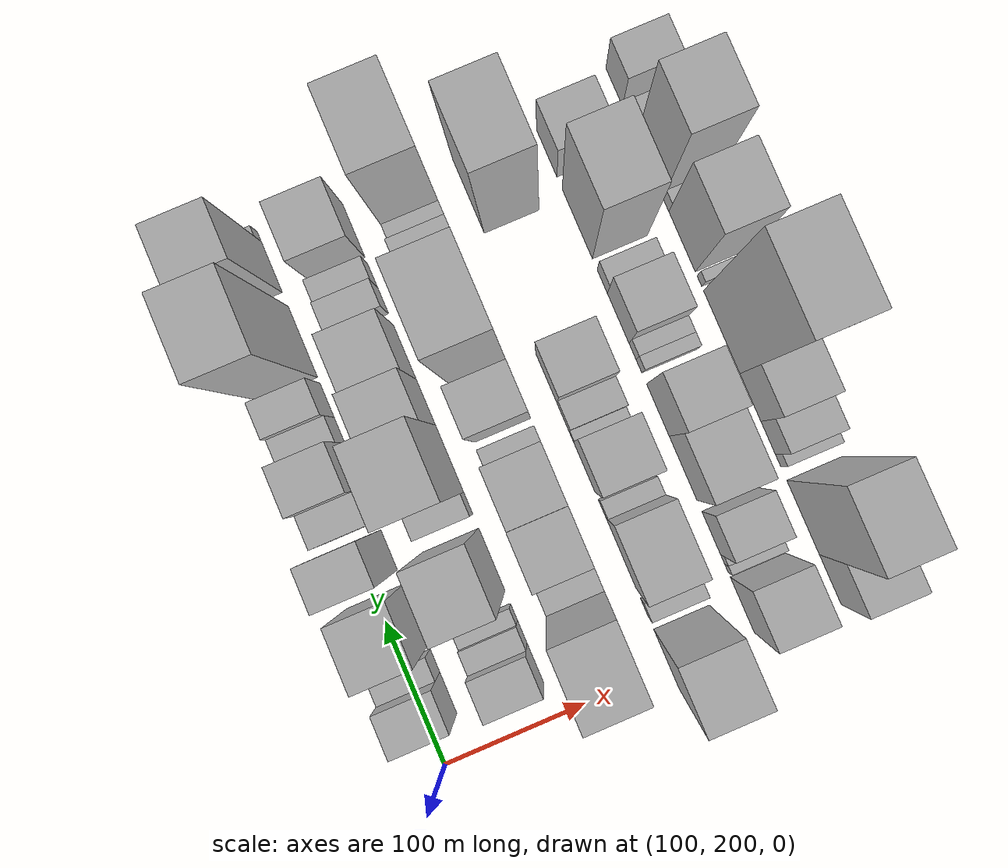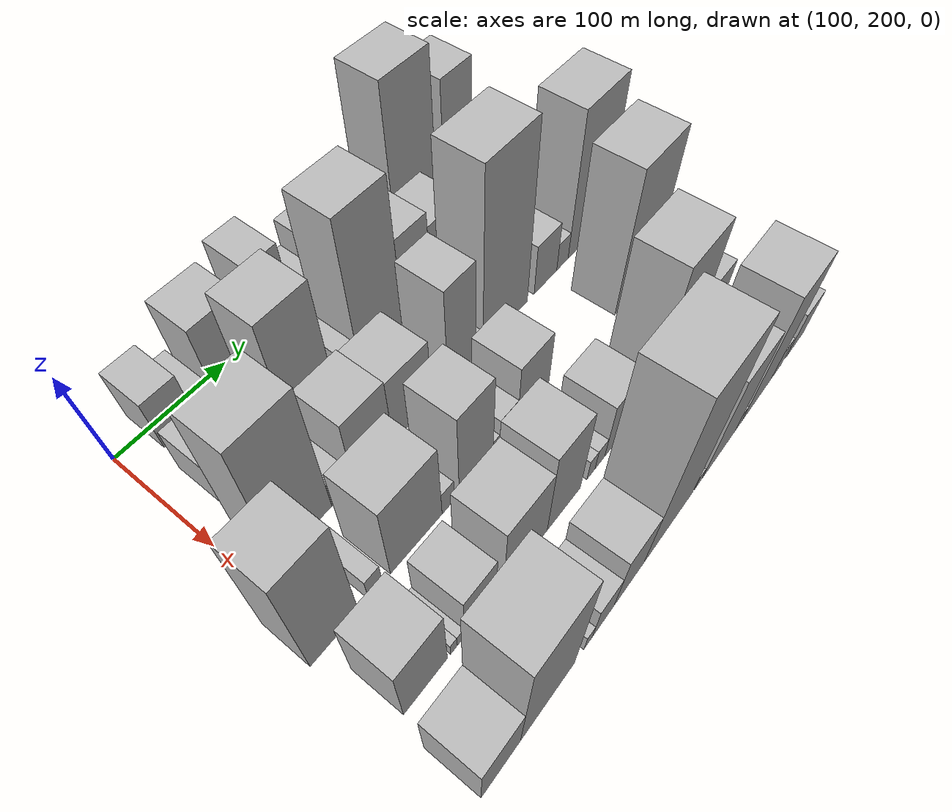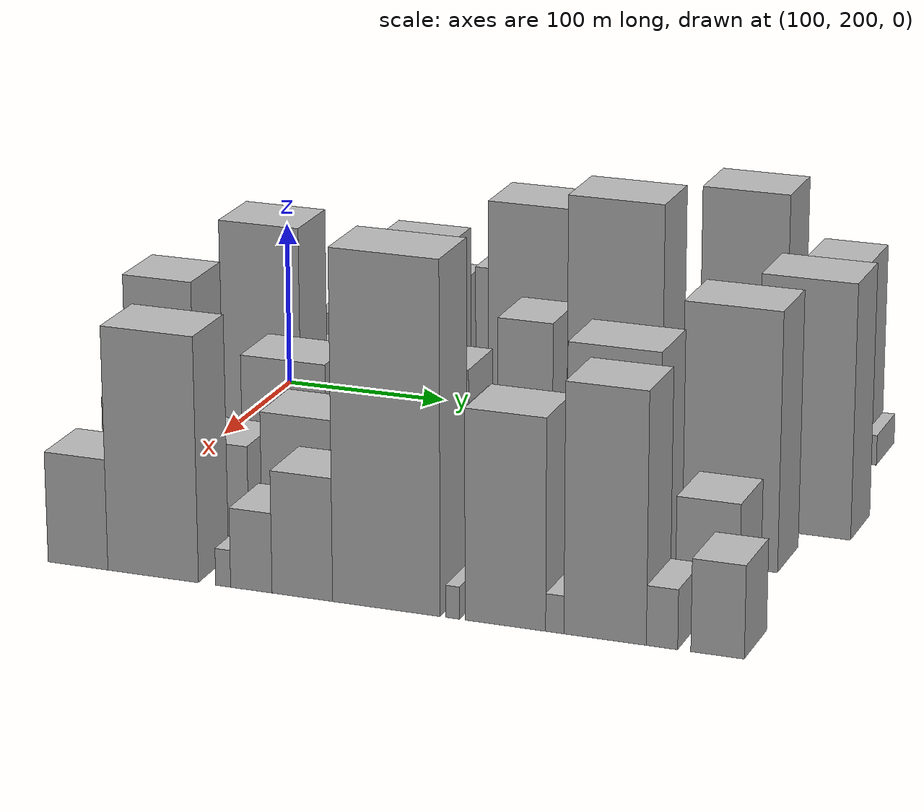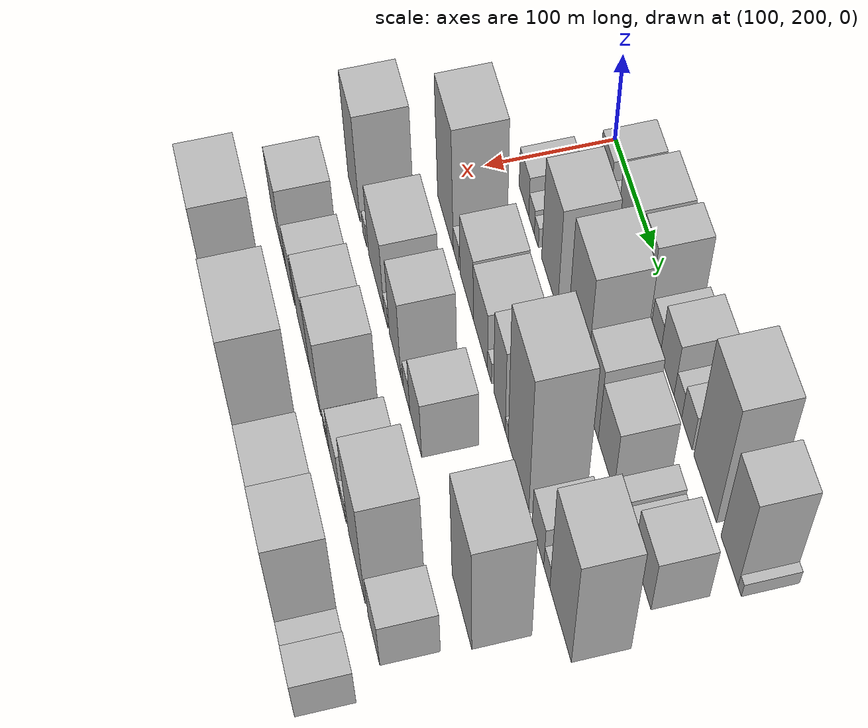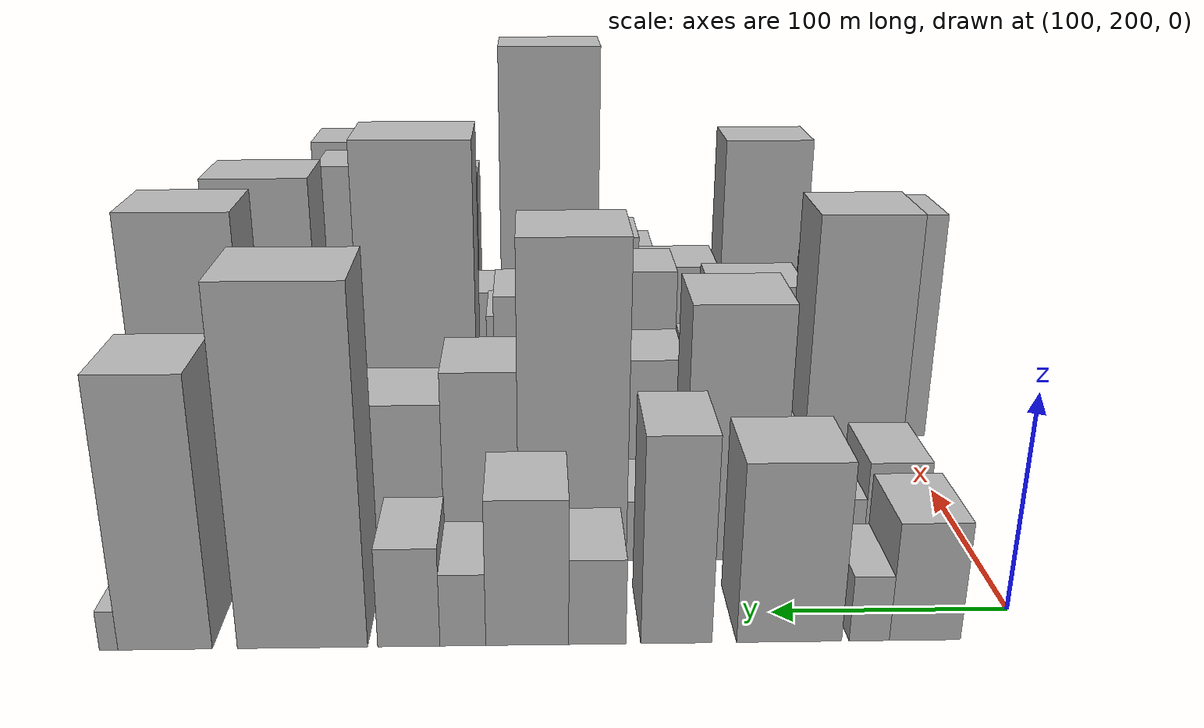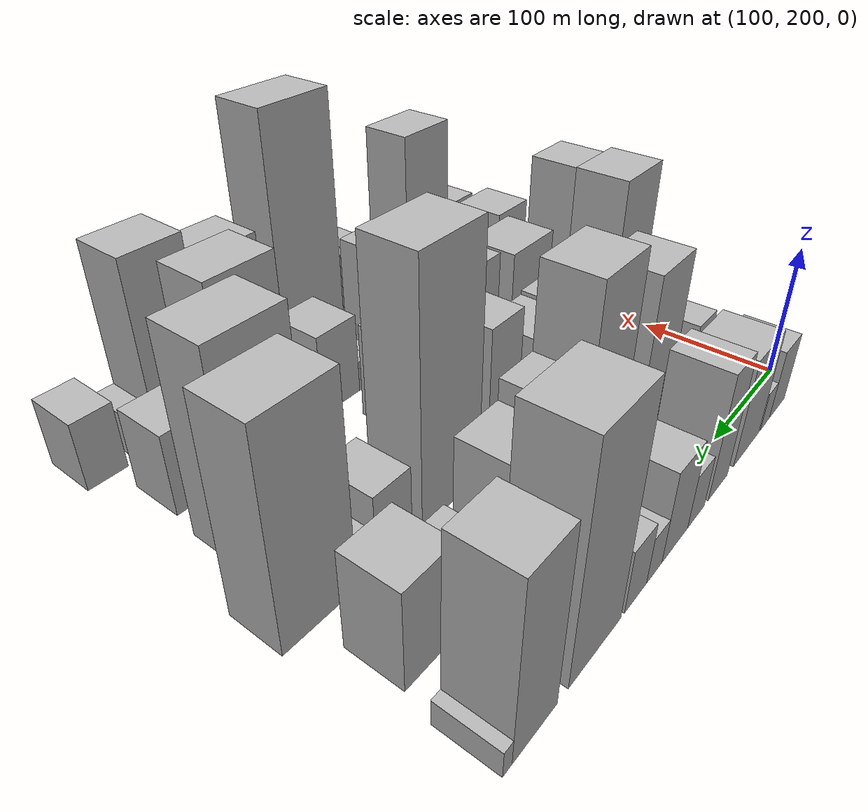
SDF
<sdf version="1.6">
 <world name="default">
  <model name="building_36">
   <static>1</static>
   <pose>100.0000 241.4894 0 0.000000 0.000000 0.000000</pose>
   <link name="link">
    <pose>0 0 27.00 0 0 0</pose>
    <collision name="collision"><geometry><box><size>40.0000 29.0069 54.0000</size></box></geometry></collision>
    <visual name="visual">
     <cast_shadows>0</cast_shadows>
     <geometry><box><size>40.0000 29.0069 54.0000</size></box></geometry>
     <material>
      <script>
       <uri>model://HANNAS_wall/materials/scripts</uri>
       <uri>model://HANNAS_wall/materials/textures</uri>
       <name>vrc/HANNAS_wall</name>
      </script>
     </material>
    </visual>
   </link>
  </model>
  <model name="building_37">
   <static>1</static>
   <pose>100.0000 264.1600 0 0.000000 0.000000 0.000000</pose>
   <link name="link">
    <pose>0 0 15.00 0 0 0</pose>
    <collision name="collision"><geometry><box><size>40.0000 16.3343 30.0000</size></box></geometry></collision>
    <visual name="visual">
     <cast_shadows>0</cast_shadows>
     <geometry><box><size>40.0000 16.3343 30.0000</size></box></geometry>
     <material>
      <script>
       <uri>model://HANNAS_wall/materials/scripts</uri>
       <uri>model://HANNAS_wall/materials/textures</uri>
       <name>vrc/HANNAS_wall</name>
      </script>
     </material>
    </visual>
   </link>
  </model>
  <model name="building_38">
   <static>1</static>
   <pose>100.0000 296.6469 0 0.000000 0.000000 0.000000</pose>
   <link name="link">
    <pose>0 0 40.50 0 0 0</pose>
    <collision name="collision"><geometry><box><size>40.0000 42.6395 81.0000</size></box></geometry></collision>
    <visual name="visual">
     <cast_shadows>0</cast_shadows>
     <geometry><box><size>40.0000 42.6395 81.0000</size></box></geometry>
     <material>
      <script>
       <uri>model://HANNAS_wall/materials/scripts</uri>
       <uri>model://HANNAS_wall/materials/textures</uri>
       <name>vrc/HANNAS_wall</name>
      </script>
     </material>
    </visual>
   </link>
  </model>
  <model name="building_39">
   <static>1</static>
   <pose>100.0000 342.3426 0 0.000000 0.000000 0.000000</pose>
   <link name="link">
    <pose>0 0 46.50 0 0 0</pose>
    <collision name="collision"><geometry><box><size>40.0000 28.7520 93.0000</size></box></geometry></collision>
    <visual name="visual">
     <cast_shadows>0</cast_shadows>
     <geometry><box><size>40.0000 28.7520 93.0000</size></box></geometry>
     <material>
      <script>
       <uri>model://HANNAS_wall/materials/scripts</uri>
       <uri>model://HANNAS_wall/materials/textures</uri>
       <name>vrc/HANNAS_wall</name>
      </script>
     </material>
    </visual>
   </link>
  </model>
  <model name="building_40">
   <static>1</static>
   <pose>100.0000 374.2584 0 0.000000 0.000000 0.000000</pose>
   <link name="link">
    <pose>0 0 19.50 0 0 0</pose>
    <collision name="collision"><geometry><box><size>40.0000 23.0796 39.0000</size></box></geometry></collision>
    <visual name="visual">
     <cast_shadows>0</cast_shadows>
     <geometry><box><size>40.0000 23.0796 39.0000</size></box></geometry>
     <material>
      <script>
       <uri>model://HANNAS_wall/materials/scripts</uri>
       <uri>model://HANNAS_wall/materials/textures</uri>
       <name>vrc/HANNAS_wall</name>
      </script>
     </material>
    </visual>
   </link>
  </model>
  <model name="building_41">
   <static>1</static>
   <pose>100.0000 402.4575 0 0.000000 0.000000 0.000000</pose>
   <link name="link">
    <pose>0 0 33.00 0 0 0</pose>
    <collision name="collision"><geometry><box><size>40.0000 33.3187 66.0000</size></box></geometry></collision>
    <visual name="visual">
     <cast_shadows>0</cast_shadows>
     <geometry><box><size>40.0000 33.3187 66.0000</size></box></geometry>
     <material>
      <script>
       <uri>model://HANNAS_wall/materials/scripts</uri>
       <uri>model://HANNAS_wall/materials/textures</uri>
       <name>vrc/HANNAS_wall</name>
      </script>
     </material>
    </visual>
   </link>
  </model>
  <model name="building_42">
   <static>1</static>
   <pose>100.0000 428.3117 0 0.000000 0.000000 0.000000</pose>
   <link name="link">
    <pose>0 0 16.50 0 0 0</pose>
    <collision name="collision"><geometry><box><size>40.0000 18.3898 33.0000</size></box></geometry></collision>
    <visual name="visual">
     <cast_shadows>0</cast_shadows>
     <geometry><box><size>40.0000 18.3898 33.0000</size></box></geometry>
     <material>
      <script>
       <uri>model://HANNAS_wall/materials/scripts</uri>
       <uri>model://HANNAS_wall/materials/textures</uri>
       <name>vrc/HANNAS_wall</name>
      </script>
     </material>
    </visual>
   </link>
  </model>
  <model name="building_43">
   <static>1</static>
   <pose>100.0000 449.9957 0 0.000000 0.000000 0.000000</pose>
   <link name="link">
    <pose>0 0 22.50 0 0 0</pose>
    <collision name="collision"><geometry><box><size>40.0000 24.9781 45.0000</size></box></geometry></collision>
    <visual name="visual">
     <cast_shadows>0</cast_shadows>
     <geometry><box><size>40.0000 24.9781 45.0000</size></box></geometry>
     <material>
      <script>
       <uri>model://HANNAS_wall/materials/scripts</uri>
       <uri>model://HANNAS_wall/materials/textures</uri>
       <name>vrc/HANNAS_wall</name>
      </script>
     </material>
    </visual>
   </link>
  </model>
  <model name="building_44">
   <static>1</static>
   <pose>100.0000 492.5037 0 0.000000 0.000000 0.000000</pose>
   <link name="link">
    <pose>0 0 78.00 0 0 0</pose>
    <collision name="collision"><geometry><box><size>40.0000 52.0380 156.0000</size></box></geometry></collision>
    <visual name="visual">
     <cast_shadows>0</cast_shadows>
     <geometry><box><size>40.0000 52.0380 156.0000</size></box></geometry>
     <material>
      <script>
       <uri>model://HANNAS_wall/materials/scripts</uri>
       <uri>model://HANNAS_wall/materials/textures</uri>
       <name>vrc/HANNAS_wall</name>
      </script>
     </material>
    </visual>
   </link>
  </model>
  <model name="building_45">
   <static>1</static>
   <pose>100.0000 547.2936 0 0.000000 0.000000 0.000000</pose>
   <link name="link">
    <pose>0 0 60.00 0 0 0</pose>
    <collision name="collision"><geometry><box><size>40.0000 37.5418 120.0000</size></box></geometry></collision>
    <visual name="visual">
     <cast_shadows>0</cast_shadows>
     <geometry><box><size>40.0000 37.5418 120.0000</size></box></geometry>
     <material>
      <script>
       <uri>model://HANNAS_wall/materials/scripts</uri>
       <uri>model://HANNAS_wall/materials/textures</uri>
       <name>vrc/HANNAS_wall</name>
      </script>
     </material>
    </visual>
   </link>
  </model>
  <model name="building_46">
   <static>1</static>
   <pose>100.0000 569.7478 0 0.000000 0.000000 0.000000</pose>
   <link name="link">
    <pose>0 0 9.00 0 0 0</pose>
    <collision name="collision"><geometry><box><size>40.0000 7.3667 18.0000</size></box></geometry></collision>
    <visual name="visual">
     <cast_shadows>0</cast_shadows>
     <geometry><box><size>40.0000 7.3667 18.0000</size></box></geometry>
     <material>
      <script>
       <uri>model://HANNAS_wall/materials/scripts</uri>
       <uri>model://HANNAS_wall/materials/textures</uri>
       <name>vrc/HANNAS_wall</name>
      </script>
     </material>
    </visual>
   </link>
  </model>
  <model name="building_87">
   <static>1</static>
   <pose>160.0000 237.1192 0 0.000000 0.000000 0.000000</pose>
   <link name="link">
    <pose>0 0 24.00 0 0 0</pose>
    <collision name="collision"><geometry><box><size>40.0000 27.9937 48.0000</size></box></geometry></collision>
    <visual name="visual">
     <cast_shadows>0</cast_shadows>
     <geometry><box><size>40.0000 27.9937 48.0000</size></box></geometry>
     <material>
      <script>
       <uri>model://HANNAS_wall/materials/scripts</uri>
       <uri>model://HANNAS_wall/materials/textures</uri>
       <name>vrc/HANNAS_wall</name>
      </script>
     </material>
    </visual>
   </link>
  </model>
  <model name="building_88">
   <static>1</static>
   <pose>160.0000 259.2010 0 0.000000 0.000000 0.000000</pose>
   <link name="link">
    <pose>0 0 15.00 0 0 0</pose>
    <collision name="collision"><geometry><box><size>40.0000 16.1699 30.0000</size></box></geometry></collision>
    <visual name="visual">
     <cast_shadows>0</cast_shadows>
     <geometry><box><size>40.0000 16.1699 30.0000</size></box></geometry>
     <material>
      <script>
       <uri>model://HANNAS_wall/materials/scripts</uri>
       <uri>model://HANNAS_wall/materials/textures</uri>
       <name>vrc/HANNAS_wall</name>
      </script>
     </material>
    </visual>
   </link>
  </model>
  <model name="building_89">
   <static>1</static>
   <pose>160.0000 273.0693 0 0.000000 0.000000 0.000000</pose>
   <link name="link">
    <pose>0 0 12.00 0 0 0</pose>
    <collision name="collision"><geometry><box><size>40.0000 11.5666 24.0000</size></box></geometry></collision>
    <visual name="visual">
     <cast_shadows>0</cast_shadows>
     <geometry><box><size>40.0000 11.5666 24.0000</size></box></geometry>
     <material>
      <script>
       <uri>model://HANNAS_wall/materials/scripts</uri>
       <uri>model://HANNAS_wall/materials/textures</uri>
       <name>vrc/HANNAS_wall</name>
      </script>
     </material>
    </visual>
   </link>
  </model>
  <model name="building_90">
   <static>1</static>
   <pose>160.0000 310.0901 0 0.000000 0.000000 0.000000</pose>
   <link name="link">
    <pose>0 0 61.50 0 0 0</pose>
    <collision name="collision"><geometry><box><size>40.0000 44.4751 123.0000</size></box></geometry></collision>
    <visual name="visual">
     <cast_shadows>0</cast_shadows>
     <geometry><box><size>40.0000 44.4751 123.0000</size></box></geometry>
     <material>
      <script>
       <uri>model://HANNAS_wall/materials/scripts</uri>
       <uri>model://HANNAS_wall/materials/textures</uri>
       <name>vrc/HANNAS_wall</name>
      </script>
     </material>
    </visual>
   </link>
  </model>
  <model name="building_91">
   <static>1</static>
   <pose>160.0000 350.1598 0 0.000000 0.000000 0.000000</pose>
   <link name="link">
    <pose>0 0 15.00 0 0 0</pose>
    <collision name="collision"><geometry><box><size>40.0000 15.6643 30.0000</size></box></geometry></collision>
    <visual name="visual">
     <cast_shadows>0</cast_shadows>
     <geometry><box><size>40.0000 15.6643 30.0000</size></box></geometry>
     <material>
      <script>
       <uri>model://HANNAS_wall/materials/scripts</uri>
       <uri>model://HANNAS_wall/materials/textures</uri>
       <name>vrc/HANNAS_wall</name>
      </script>
     </material>
    </visual>
   </link>
  </model>
  <model name="building_92">
   <static>1</static>
   <pose>160.0000 382.2190 0 0.000000 0.000000 0.000000</pose>
   <link name="link">
    <pose>0 0 76.50 0 0 0</pose>
    <collision name="collision"><geometry><box><size>40.0000 48.4540 153.0000</size></box></geometry></collision>
    <visual name="visual">
     <cast_shadows>0</cast_shadows>
     <geometry><box><size>40.0000 48.4540 153.0000</size></box></geometry>
     <material>
      <script>
       <uri>model://HANNAS_wall/materials/scripts</uri>
       <uri>model://HANNAS_wall/materials/textures</uri>
       <name>vrc/HANNAS_wall</name>
      </script>
     </material>
    </visual>
   </link>
  </model>
  <model name="building_93">
   <static>1</static>
   <pose>160.0000 422.9871 0 0.000000 0.000000 0.000000</pose>
   <link name="link">
    <pose>0 0 46.50 0 0 0</pose>
    <collision name="collision"><geometry><box><size>40.0000 33.0822 93.0000</size></box></geometry></collision>
    <visual name="visual">
     <cast_shadows>0</cast_shadows>
     <geometry><box><size>40.0000 33.0822 93.0000</size></box></geometry>
     <material>
      <script>
       <uri>model://HANNAS_wall/materials/scripts</uri>
       <uri>model://HANNAS_wall/materials/textures</uri>
       <name>vrc/HANNAS_wall</name>
      </script>
     </material>
    </visual>
   </link>
  </model>
  <model name="building_94">
   <static>1</static>
   <pose>160.0000 459.3986 0 0.000000 0.000000 0.000000</pose>
   <link name="link">
    <pose>0 0 39.00 0 0 0</pose>
    <collision name="collision"><geometry><box><size>40.0000 39.7409 78.0000</size></box></geometry></collision>
    <visual name="visual">
     <cast_shadows>0</cast_shadows>
     <geometry><box><size>40.0000 39.7409 78.0000</size></box></geometry>
     <material>
      <script>
       <uri>model://HANNAS_wall/materials/scripts</uri>
       <uri>model://HANNAS_wall/materials/textures</uri>
       <name>vrc/HANNAS_wall</name>
      </script>
     </material>
    </visual>
   </link>
  </model>
  <model name="building_95">
   <static>1</static>
   <pose>160.0000 497.0071 0 0.000000 0.000000 0.000000</pose>
   <link name="link">
    <pose>0 0 18.00 0 0 0</pose>
    <collision name="collision"><geometry><box><size>40.0000 19.4762 36.0000</size></box></geometry></collision>
    <visual name="visual">
     <cast_shadows>0</cast_shadows>
     <geometry><box><size>40.0000 19.4762 36.0000</size></box></geometry>
     <material>
      <script>
       <uri>model://HANNAS_wall/materials/scripts</uri>
       <uri>model://HANNAS_wall/materials/textures</uri>
       <name>vrc/HANNAS_wall</name>
      </script>
     </material>
    </visual>
   </link>
  </model>
  <model name="building_96">
   <static>1</static>
   <pose>160.0000 515.1529 0 0.000000 0.000000 0.000000</pose>
   <link name="link">
    <pose>0 0 15.00 0 0 0</pose>
    <collision name="collision"><geometry><box><size>40.0000 16.8154 30.0000</size></box></geometry></collision>
    <visual name="visual">
     <cast_shadows>0</cast_shadows>
     <geometry><box><size>40.0000 16.8154 30.0000</size></box></geometry>
     <material>
      <script>
       <uri>model://HANNAS_wall/materials/scripts</uri>
       <uri>model://HANNAS_wall/materials/textures</uri>
       <name>vrc/HANNAS_wall</name>
      </script>
     </material>
    </visual>
   </link>
  </model>
  <model name="building_97">
   <static>1</static>
   <pose>160.0000 548.3710 0 0.000000 0.000000 0.000000</pose>
   <link name="link">
    <pose>0 0 34.50 0 0 0</pose>
    <collision name="collision"><geometry><box><size>40.0000 39.6206 69.0000</size></box></geometry></collision>
    <visual name="visual">
     <cast_shadows>0</cast_shadows>
     <geometry><box><size>40.0000 39.6206 69.0000</size></box></geometry>
     <material>
      <script>
       <uri>model://HANNAS_wall/materials/scripts</uri>
       <uri>model://HANNAS_wall/materials/textures</uri>
       <name>vrc/HANNAS_wall</name>
      </script>
     </material>
    </visual>
   </link>
  </model>
  <model name="building_151">
   <static>1</static>
   <pose>220.0000 241.5914 0 0.000000 0.000000 0.000000</pose>
   <link name="link">
    <pose>0 0 72.00 0 0 0</pose>
    <collision name="collision"><geometry><box><size>40.0000 48.6770 144.0000</size></box></geometry></collision>
    <visual name="visual">
     <cast_shadows>0</cast_shadows>
     <geometry><box><size>40.0000 48.6770 144.0000</size></box></geometry>
     <material>
      <script>
       <uri>model://HANNAS_wall/materials/scripts</uri>
       <uri>model://HANNAS_wall/materials/textures</uri>
       <name>vrc/HANNAS_wall</name>
      </script>
     </material>
    </visual>
   </link>
  </model>
  <model name="building_152">
   <static>1</static>
   <pose>220.0000 274.8368 0 0.000000 0.000000 0.000000</pose>
   <link name="link">
    <pose>0 0 15.00 0 0 0</pose>
    <collision name="collision"><geometry><box><size>40.0000 17.8139 30.0000</size></box></geometry></collision>
    <visual name="visual">
     <cast_shadows>0</cast_shadows>
     <geometry><box><size>40.0000 17.8139 30.0000</size></box></geometry>
     <material>
      <script>
       <uri>model://HANNAS_wall/materials/scripts</uri>
       <uri>model://HANNAS_wall/materials/textures</uri>
       <name>vrc/HANNAS_wall</name>
      </script>
     </material>
    </visual>
   </link>
  </model>
  <model name="building_153">
   <static>1</static>
   <pose>220.0000 306.5463 0 0.000000 0.000000 0.000000</pose>
   <link name="link">
    <pose>0 0 37.50 0 0 0</pose>
    <collision name="collision"><geometry><box><size>40.0000 39.6051 75.0000</size></box></geometry></collision>
    <visual name="visual">
     <cast_shadows>0</cast_shadows>
     <geometry><box><size>40.0000 39.6051 75.0000</size></box></geometry>
     <material>
      <script>
       <uri>model://HANNAS_wall/materials/scripts</uri>
       <uri>model://HANNAS_wall/materials/textures</uri>
       <name>vrc/HANNAS_wall</name>
      </script>
     </material>
    </visual>
   </link>
  </model>
  <model name="building_154">
   <static>1</static>
   <pose>220.0000 347.1592 0 0.000000 0.000000 0.000000</pose>
   <link name="link">
    <pose>0 0 36.00 0 0 0</pose>
    <collision name="collision"><geometry><box><size>40.0000 41.6206 72.0000</size></box></geometry></collision>
    <visual name="visual">
     <cast_shadows>0</cast_shadows>
     <geometry><box><size>40.0000 41.6206 72.0000</size></box></geometry>
     <material>
      <script>
       <uri>model://HANNAS_wall/materials/scripts</uri>
       <uri>model://HANNAS_wall/materials/textures</uri>
       <name>vrc/HANNAS_wall</name>
      </script>
     </material>
    </visual>
   </link>
  </model>
  <model name="building_155">
   <static>1</static>
   <pose>220.0000 373.7664 0 0.000000 0.000000 0.000000</pose>
   <link name="link">
    <pose>0 0 13.50 0 0 0</pose>
    <collision name="collision"><geometry><box><size>40.0000 11.5938 27.0000</size></box></geometry></collision>
    <visual name="visual">
     <cast_shadows>0</cast_shadows>
     <geometry><box><size>40.0000 11.5938 27.0000</size></box></geometry>
     <material>
      <script>
       <uri>model://HANNAS_wall/materials/scripts</uri>
       <uri>model://HANNAS_wall/materials/textures</uri>
       <name>vrc/HANNAS_wall</name>
      </script>
     </material>
    </visual>
   </link>
  </model>
  <model name="building_156">
   <static>1</static>
   <pose>220.0000 401.7848 0 0.000000 0.000000 0.000000</pose>
   <link name="link">
    <pose>0 0 52.50 0 0 0</pose>
    <collision name="collision"><geometry><box><size>40.0000 32.4430 105.0000</size></box></geometry></collision>
    <visual name="visual">
     <cast_shadows>0</cast_shadows>
     <geometry><box><size>40.0000 32.4430 105.0000</size></box></geometry>
     <material>
      <script>
       <uri>model://HANNAS_wall/materials/scripts</uri>
       <uri>model://HANNAS_wall/materials/textures</uri>
       <name>vrc/HANNAS_wall</name>
      </script>
     </material>
    </visual>
   </link>
  </model>
  <model name="building_157">
   <static>1</static>
   <pose>220.0000 422.2212 0 0.000000 0.000000 0.000000</pose>
   <link name="link">
    <pose>0 0 10.50 0 0 0</pose>
    <collision name="collision"><geometry><box><size>40.0000 8.4297 21.0000</size></box></geometry></collision>
    <visual name="visual">
     <cast_shadows>0</cast_shadows>
     <geometry><box><size>40.0000 8.4297 21.0000</size></box></geometry>
     <material>
      <script>
       <uri>model://HANNAS_wall/materials/scripts</uri>
       <uri>model://HANNAS_wall/materials/textures</uri>
       <name>vrc/HANNAS_wall</name>
      </script>
     </material>
    </visual>
   </link>
  </model>
  <model name="building_158">
   <static>1</static>
   <pose>220.0000 454.1619 0 0.000000 0.000000 0.000000</pose>
   <link name="link">
    <pose>0 0 90.00 0 0 0</pose>
    <collision name="collision"><geometry><box><size>40.0000 55.4517 180.0000</size></box></geometry></collision>
    <visual name="visual">
     <cast_shadows>0</cast_shadows>
     <geometry><box><size>40.0000 55.4517 180.0000</size></box></geometry>
     <material>
      <script>
       <uri>model://HANNAS_wall/materials/scripts</uri>
       <uri>model://HANNAS_wall/materials/textures</uri>
       <name>vrc/HANNAS_wall</name>
      </script>
     </material>
    </visual>
   </link>
  </model>
  <model name="building_159">
   <static>1</static>
   <pose>220.0000 506.1049 0 0.000000 0.000000 0.000000</pose>
   <link name="link">
    <pose>0 0 27.00 0 0 0</pose>
    <collision name="collision"><geometry><box><size>40.0000 30.4342 54.0000</size></box></geometry></collision>
    <visual name="visual">
     <cast_shadows>0</cast_shadows>
     <geometry><box><size>40.0000 30.4342 54.0000</size></box></geometry>
     <material>
      <script>
       <uri>model://HANNAS_wall/materials/scripts</uri>
       <uri>model://HANNAS_wall/materials/textures</uri>
       <name>vrc/HANNAS_wall</name>
      </script>
     </material>
    </visual>
   </link>
  </model>
  <model name="building_160">
   <static>1</static>
   <pose>220.0000 529.2427 0 0.000000 0.000000 0.000000</pose>
   <link name="link">
    <pose>0 0 15.00 0 0 0</pose>
    <collision name="collision"><geometry><box><size>40.0000 15.8416 30.0000</size></box></geometry></collision>
    <visual name="visual">
     <cast_shadows>0</cast_shadows>
     <geometry><box><size>40.0000 15.8416 30.0000</size></box></geometry>
     <material>
      <script>
       <uri>model://HANNAS_wall/materials/scripts</uri>
       <uri>model://HANNAS_wall/materials/textures</uri>
       <name>vrc/HANNAS_wall</name>
      </script>
     </material>
    </visual>
   </link>
  </model>
  <model name="building_161">
   <static>1</static>
   <pose>220.0000 564.0679 0 0.000000 0.000000 0.000000</pose>
   <link name="link">
    <pose>0 0 73.50 0 0 0</pose>
    <collision name="collision"><geometry><box><size>40.0000 53.8087 147.0000</size></box></geometry></collision>
    <visual name="visual">
     <cast_shadows>0</cast_shadows>
     <geometry><box><size>40.0000 53.8087 147.0000</size></box></geometry>
     <material>
      <script>
       <uri>model://HANNAS_wall/materials/scripts</uri>
       <uri>model://HANNAS_wall/materials/textures</uri>
       <name>vrc/HANNAS_wall</name>
      </script>
     </material>
    </visual>
   </link>
  </model>
  <model name="building_204">
   <static>1</static>
   <pose>280.0000 205.6495 0 0.000000 0.000000 0.000000</pose>
   <link name="link">
    <pose>0 0 63.00 0 0 0</pose>
    <collision name="collision"><geometry><box><size>40.0000 41.5011 126.0000</size></box></geometry></collision>
    <visual name="visual">
     <cast_shadows>0</cast_shadows>
     <geometry><box><size>40.0000 41.5011 126.0000</size></box></geometry>
     <material>
      <script>
       <uri>model://HANNAS_wall/materials/scripts</uri>
       <uri>model://HANNAS_wall/materials/textures</uri>
       <name>vrc/HANNAS_wall</name>
      </script>
     </material>
    </visual>
   </link>
  </model>
  <model name="building_205">
   <static>1</static>
   <pose>280.0000 241.9253 0 0.000000 0.000000 0.000000</pose>
   <link name="link">
    <pose>0 0 13.50 0 0 0</pose>
    <collision name="collision"><geometry><box><size>40.0000 13.0503 27.0000</size></box></geometry></collision>
    <visual name="visual">
     <cast_shadows>0</cast_shadows>
     <geometry><box><size>40.0000 13.0503 27.0000</size></box></geometry>
     <material>
      <script>
       <uri>model://HANNAS_wall/materials/scripts</uri>
       <uri>model://HANNAS_wall/materials/textures</uri>
       <name>vrc/HANNAS_wall</name>
      </script>
     </material>
    </visual>
   </link>
  </model>
  <model name="building_206">
   <static>1</static>
   <pose>280.0000 280.7193 0 0.000000 0.000000 0.000000</pose>
   <link name="link">
    <pose>0 0 43.50 0 0 0</pose>
    <collision name="collision"><geometry><box><size>40.0000 50.5378 87.0000</size></box></geometry></collision>
    <visual name="visual">
     <cast_shadows>0</cast_shadows>
     <geometry><box><size>40.0000 50.5378 87.0000</size></box></geometry>
     <material>
      <script>
       <uri>model://HANNAS_wall/materials/scripts</uri>
       <uri>model://HANNAS_wall/materials/textures</uri>
       <name>vrc/HANNAS_wall</name>
      </script>
     </material>
    </visual>
   </link>
  </model>
  <model name="building_207">
   <static>1</static>
   <pose>280.0000 312.3597 0 0.000000 0.000000 0.000000</pose>
   <link name="link">
    <pose>0 0 13.50 0 0 0</pose>
    <collision name="collision"><geometry><box><size>40.0000 12.7430 27.0000</size></box></geometry></collision>
    <visual name="visual">
     <cast_shadows>0</cast_shadows>
     <geometry><box><size>40.0000 12.7430 27.0000</size></box></geometry>
     <material>
      <script>
       <uri>model://HANNAS_wall/materials/scripts</uri>
       <uri>model://HANNAS_wall/materials/textures</uri>
       <name>vrc/HANNAS_wall</name>
      </script>
     </material>
    </visual>
   </link>
  </model>
  <model name="building_208">
   <static>1</static>
   <pose>280.0000 341.9331 0 0.000000 0.000000 0.000000</pose>
   <link name="link">
    <pose>0 0 48.00 0 0 0</pose>
    <collision name="collision"><geometry><box><size>40.0000 36.4038 96.0000</size></box></geometry></collision>
    <visual name="visual">
     <cast_shadows>0</cast_shadows>
     <geometry><box><size>40.0000 36.4038 96.0000</size></box></geometry>
     <material>
      <script>
       <uri>model://HANNAS_wall/materials/scripts</uri>
       <uri>model://HANNAS_wall/materials/textures</uri>
       <name>vrc/HANNAS_wall</name>
      </script>
     </material>
    </visual>
   </link>
  </model>
  <model name="building_209">
   <static>1</static>
   <pose>280.0000 363.8580 0 0.000000 0.000000 0.000000</pose>
   <link name="link">
    <pose>0 0 9.00 0 0 0</pose>
    <collision name="collision"><geometry><box><size>40.0000 7.4460 18.0000</size></box></geometry></collision>
    <visual name="visual">
     <cast_shadows>0</cast_shadows>
     <geometry><box><size>40.0000 7.4460 18.0000</size></box></geometry>
     <material>
      <script>
       <uri>model://HANNAS_wall/materials/scripts</uri>
       <uri>model://HANNAS_wall/materials/textures</uri>
       <name>vrc/HANNAS_wall</name>
      </script>
     </material>
    </visual>
   </link>
  </model>
  <model name="building_210">
   <static>1</static>
   <pose>280.0000 377.6251 0 0.000000 0.000000 0.000000</pose>
   <link name="link">
    <pose>0 0 18.00 0 0 0</pose>
    <collision name="collision"><geometry><box><size>40.0000 20.0882 36.0000</size></box></geometry></collision>
    <visual name="visual">
     <cast_shadows>0</cast_shadows>
     <geometry><box><size>40.0000 20.0882 36.0000</size></box></geometry>
     <material>
      <script>
       <uri>model://HANNAS_wall/materials/scripts</uri>
       <uri>model://HANNAS_wall/materials/textures</uri>
       <name>vrc/HANNAS_wall</name>
      </script>
     </material>
    </visual>
   </link>
  </model>
  <model name="building_211">
   <static>1</static>
   <pose>280.0000 405.7894 0 0.000000 0.000000 0.000000</pose>
   <link name="link">
    <pose>0 0 36.00 0 0 0</pose>
    <collision name="collision"><geometry><box><size>40.0000 36.2403 72.0000</size></box></geometry></collision>
    <visual name="visual">
     <cast_shadows>0</cast_shadows>
     <geometry><box><size>40.0000 36.2403 72.0000</size></box></geometry>
     <material>
      <script>
       <uri>model://HANNAS_wall/materials/scripts</uri>
       <uri>model://HANNAS_wall/materials/textures</uri>
       <name>vrc/HANNAS_wall</name>
      </script>
     </material>
    </visual>
   </link>
  </model>
  <model name="building_212">
   <static>1</static>
   <pose>280.0000 539.6585 0 0.000000 0.000000 0.000000</pose>
   <link name="link">
    <pose>0 0 73.50 0 0 0</pose>
    <collision name="collision"><geometry><box><size>40.0000 54.4994 147.0000</size></box></geometry></collision>
    <visual name="visual">
     <cast_shadows>0</cast_shadows>
     <geometry><box><size>40.0000 54.4994 147.0000</size></box></geometry>
     <material>
      <script>
       <uri>model://HANNAS_wall/materials/scripts</uri>
       <uri>model://HANNAS_wall/materials/textures</uri>
       <name>vrc/HANNAS_wall</name>
      </script>
     </material>
    </visual>
   </link>
  </model>
  <model name="building_252">
   <static>1</static>
   <pose>340.0000 218.1808 0 0.000000 0.000000 0.000000</pose>
   <link name="link">
    <pose>0 0 37.50 0 0 0</pose>
    <collision name="collision"><geometry><box><size>40.0000 39.2118 75.0000</size></box></geometry></collision>
    <visual name="visual">
     <cast_shadows>0</cast_shadows>
     <geometry><box><size>40.0000 39.2118 75.0000</size></box></geometry>
     <material>
      <script>
       <uri>model://HANNAS_wall/materials/scripts</uri>
       <uri>model://HANNAS_wall/materials/textures</uri>
       <name>vrc/HANNAS_wall</name>
      </script>
     </material>
    </visual>
   </link>
  </model>
  <model name="building_253">
   <static>1</static>
   <pose>340.0000 243.9106 0 0.000000 0.000000 0.000000</pose>
   <link name="link">
    <pose>0 0 7.50 0 0 0</pose>
    <collision name="collision"><geometry><box><size>40.0000 6.2478 15.0000</size></box></geometry></collision>
    <visual name="visual">
     <cast_shadows>0</cast_shadows>
     <geometry><box><size>40.0000 6.2478 15.0000</size></box></geometry>
     <material>
      <script>
       <uri>model://HANNAS_wall/materials/scripts</uri>
       <uri>model://HANNAS_wall/materials/textures</uri>
       <name>vrc/HANNAS_wall</name>
      </script>
     </material>
    </visual>
   </link>
  </model>
  <model name="building_254">
   <static>1</static>
   <pose>340.0000 250.3614 0 0.000000 0.000000 0.000000</pose>
   <link name="link">
    <pose>0 0 7.50 0 0 0</pose>
    <collision name="collision"><geometry><box><size>40.0000 6.6537 15.0000</size></box></geometry></collision>
    <visual name="visual">
     <cast_shadows>0</cast_shadows>
     <geometry><box><size>40.0000 6.6537 15.0000</size></box></geometry>
     <material>
      <script>
       <uri>model://HANNAS_wall/materials/scripts</uri>
       <uri>model://HANNAS_wall/materials/textures</uri>
       <name>vrc/HANNAS_wall</name>
      </script>
     </material>
    </visual>
   </link>
  </model>
  <model name="building_255">
   <static>1</static>
   <pose>340.0000 269.1469 0 0.000000 0.000000 0.000000</pose>
   <link name="link">
    <pose>0 0 28.50 0 0 0</pose>
    <collision name="collision"><geometry><box><size>40.0000 30.9172 57.0000</size></box></geometry></collision>
    <visual name="visual">
     <cast_shadows>0</cast_shadows>
     <geometry><box><size>40.0000 30.9172 57.0000</size></box></geometry>
     <material>
      <script>
       <uri>model://HANNAS_wall/materials/scripts</uri>
       <uri>model://HANNAS_wall/materials/textures</uri>
       <name>vrc/HANNAS_wall</name>
      </script>
     </material>
    </visual>
   </link>
  </model>
  <model name="building_256">
   <static>1</static>
   <pose>340.0000 315.6574 0 0.000000 0.000000 0.000000</pose>
   <link name="link">
    <pose>0 0 39.00 0 0 0</pose>
    <collision name="collision"><geometry><box><size>40.0000 46.1039 78.0000</size></box></geometry></collision>
    <visual name="visual">
     <cast_shadows>0</cast_shadows>
     <geometry><box><size>40.0000 46.1039 78.0000</size></box></geometry>
     <material>
      <script>
       <uri>model://HANNAS_wall/materials/scripts</uri>
       <uri>model://HANNAS_wall/materials/textures</uri>
       <name>vrc/HANNAS_wall</name>
      </script>
     </material>
    </visual>
   </link>
  </model>
  <model name="building_257">
   <static>1</static>
   <pose>340.0000 357.5673 0 0.000000 0.000000 0.000000</pose>
   <link name="link">
    <pose>0 0 48.00 0 0 0</pose>
    <collision name="collision"><geometry><box><size>40.0000 37.7157 96.0000</size></box></geometry></collision>
    <visual name="visual">
     <cast_shadows>0</cast_shadows>
     <geometry><box><size>40.0000 37.7157 96.0000</size></box></geometry>
     <material>
      <script>
       <uri>model://HANNAS_wall/materials/scripts</uri>
       <uri>model://HANNAS_wall/materials/textures</uri>
       <name>vrc/HANNAS_wall</name>
      </script>
     </material>
    </visual>
   </link>
  </model>
  <model name="building_258">
   <static>1</static>
   <pose>340.0000 389.2674 0 0.000000 0.000000 0.000000</pose>
   <link name="link">
    <pose>0 0 12.00 0 0 0</pose>
    <collision name="collision"><geometry><box><size>40.0000 9.6847 24.0000</size></box></geometry></collision>
    <visual name="visual">
     <cast_shadows>0</cast_shadows>
     <geometry><box><size>40.0000 9.6847 24.0000</size></box></geometry>
     <material>
      <script>
       <uri>model://HANNAS_wall/materials/scripts</uri>
       <uri>model://HANNAS_wall/materials/textures</uri>
       <name>vrc/HANNAS_wall</name>
      </script>
     </material>
    </visual>
   </link>
  </model>
  <model name="building_259">
   <static>1</static>
   <pose>340.0000 400.0039 0 0.000000 0.000000 0.000000</pose>
   <link name="link">
    <pose>0 0 12.00 0 0 0</pose>
    <collision name="collision"><geometry><box><size>40.0000 11.7882 24.0000</size></box></geometry></collision>
    <visual name="visual">
     <cast_shadows>0</cast_shadows>
     <geometry><box><size>40.0000 11.7882 24.0000</size></box></geometry>
     <material>
      <script>
       <uri>model://HANNAS_wall/materials/scripts</uri>
       <uri>model://HANNAS_wall/materials/textures</uri>
       <name>vrc/HANNAS_wall</name>
      </script>
     </material>
    </visual>
   </link>
  </model>
  <model name="building_260">
   <static>1</static>
   <pose>340.0000 424.1784 0 0.000000 0.000000 0.000000</pose>
   <link name="link">
    <pose>0 0 31.50 0 0 0</pose>
    <collision name="collision"><geometry><box><size>40.0000 36.5609 63.0000</size></box></geometry></collision>
    <visual name="visual">
     <cast_shadows>0</cast_shadows>
     <geometry><box><size>40.0000 36.5609 63.0000</size></box></geometry>
     <material>
      <script>
       <uri>model://HANNAS_wall/materials/scripts</uri>
       <uri>model://HANNAS_wall/materials/textures</uri>
       <name>vrc/HANNAS_wall</name>
      </script>
     </material>
    </visual>
   </link>
  </model>
  <model name="building_261">
   <static>1</static>
   <pose>340.0000 451.1692 0 0.000000 0.000000 0.000000</pose>
   <link name="link">
    <pose>0 0 15.00 0 0 0</pose>
    <collision name="collision"><geometry><box><size>40.0000 17.4206 30.0000</size></box></geometry></collision>
    <visual name="visual">
     <cast_shadows>0</cast_shadows>
     <geometry><box><size>40.0000 17.4206 30.0000</size></box></geometry>
     <material>
      <script>
       <uri>model://HANNAS_wall/materials/scripts</uri>
       <uri>model://HANNAS_wall/materials/textures</uri>
       <name>vrc/HANNAS_wall</name>
      </script>
     </material>
    </visual>
   </link>
  </model>
  <model name="building_262">
   <static>1</static>
   <pose>340.0000 493.6561 0 0.000000 0.000000 0.000000</pose>
   <link name="link">
    <pose>0 0 69.00 0 0 0</pose>
    <collision name="collision"><geometry><box><size>40.0000 51.5532 138.0000</size></box></geometry></collision>
    <visual name="visual">
     <cast_shadows>0</cast_shadows>
     <geometry><box><size>40.0000 51.5532 138.0000</size></box></geometry>
     <material>
      <script>
       <uri>model://HANNAS_wall/materials/scripts</uri>
       <uri>model://HANNAS_wall/materials/textures</uri>
       <name>vrc/HANNAS_wall</name>
      </script>
     </material>
    </visual>
   </link>
  </model>
  <model name="building_263">
   <static>1</static>
   <pose>340.0000 545.9384 0 0.000000 0.000000 0.000000</pose>
   <link name="link">
    <pose>0 0 30.00 0 0 0</pose>
    <collision name="collision"><geometry><box><size>40.0000 35.0116 60.0000</size></box></geometry></collision>
    <visual name="visual">
     <cast_shadows>0</cast_shadows>
     <geometry><box><size>40.0000 35.0116 60.0000</size></box></geometry>
     <material>
      <script>
       <uri>model://HANNAS_wall/materials/scripts</uri>
       <uri>model://HANNAS_wall/materials/textures</uri>
       <name>vrc/HANNAS_wall</name>
      </script>
     </material>
    </visual>
   </link>
  </model>
  <model name="building_308">
   <static>1</static>
   <pose>400.0000 210.3996 0 0.000000 0.000000 0.000000</pose>
   <link name="link">
    <pose>0 0 31.50 0 0 0</pose>
    <collision name="collision"><geometry><box><size>40.0000 35.4806 63.0000</size></box></geometry></collision>
    <visual name="visual">
     <cast_shadows>0</cast_shadows>
     <geometry><box><size>40.0000 35.4806 63.0000</size></box></geometry>
     <material>
      <script>
       <uri>model://HANNAS_wall/materials/scripts</uri>
       <uri>model://HANNAS_wall/materials/textures</uri>
       <name>vrc/HANNAS_wall</name>
      </script>
     </material>
    </visual>
   </link>
  </model>
  <model name="building_309">
   <static>1</static>
   <pose>400.0000 254.6841 0 0.000000 0.000000 0.000000</pose>
   <link name="link">
    <pose>0 0 69.00 0 0 0</pose>
    <collision name="collision"><geometry><box><size>40.0000 53.0884 138.0000</size></box></geometry></collision>
    <visual name="visual">
     <cast_shadows>0</cast_shadows>
     <geometry><box><size>40.0000 53.0884 138.0000</size></box></geometry>
     <material>
      <script>
       <uri>model://HANNAS_wall/materials/scripts</uri>
       <uri>model://HANNAS_wall/materials/textures</uri>
       <name>vrc/HANNAS_wall</name>
      </script>
     </material>
    </visual>
   </link>
  </model>
  <model name="building_310">
   <static>1</static>
   <pose>400.0000 295.5516 0 0.000000 0.000000 0.000000</pose>
   <link name="link">
    <pose>0 0 10.50 0 0 0</pose>
    <collision name="collision"><geometry><box><size>40.0000 8.6466 21.0000</size></box></geometry></collision>
    <visual name="visual">
     <cast_shadows>0</cast_shadows>
     <geometry><box><size>40.0000 8.6466 21.0000</size></box></geometry>
     <material>
      <script>
       <uri>model://HANNAS_wall/materials/scripts</uri>
       <uri>model://HANNAS_wall/materials/textures</uri>
       <name>vrc/HANNAS_wall</name>
      </script>
     </material>
    </visual>
   </link>
  </model>
  <model name="building_311">
   <static>1</static>
   <pose>400.0000 311.8292 0 0.000000 0.000000 0.000000</pose>
   <link name="link">
    <pose>0 0 22.50 0 0 0</pose>
    <collision name="collision"><geometry><box><size>40.0000 23.9087 45.0000</size></box></geometry></collision>
    <visual name="visual">
     <cast_shadows>0</cast_shadows>
     <geometry><box><size>40.0000 23.9087 45.0000</size></box></geometry>
     <material>
      <script>
       <uri>model://HANNAS_wall/materials/scripts</uri>
       <uri>model://HANNAS_wall/materials/textures</uri>
       <name>vrc/HANNAS_wall</name>
      </script>
     </material>
    </visual>
   </link>
  </model>
  <model name="building_312">
   <static>1</static>
   <pose>400.0000 341.0687 0 0.000000 0.000000 0.000000</pose>
   <link name="link">
    <pose>0 0 34.50 0 0 0</pose>
    <collision name="collision"><geometry><box><size>40.0000 34.5703 69.0000</size></box></geometry></collision>
    <visual name="visual">
     <cast_shadows>0</cast_shadows>
     <geometry><box><size>40.0000 34.5703 69.0000</size></box></geometry>
     <material>
      <script>
       <uri>model://HANNAS_wall/materials/scripts</uri>
       <uri>model://HANNAS_wall/materials/textures</uri>
       <name>vrc/HANNAS_wall</name>
      </script>
     </material>
    </visual>
   </link>
  </model>
  <model name="building_313">
   <static>1</static>
   <pose>400.0000 388.6595 0 0.000000 0.000000 0.000000</pose>
   <link name="link">
    <pose>0 0 97.50 0 0 0</pose>
    <collision name="collision"><geometry><box><size>40.0000 60.6113 195.0000</size></box></geometry></collision>
    <visual name="visual">
     <cast_shadows>0</cast_shadows>
     <geometry><box><size>40.0000 60.6113 195.0000</size></box></geometry>
     <material>
      <script>
       <uri>model://HANNAS_wall/materials/scripts</uri>
       <uri>model://HANNAS_wall/materials/textures</uri>
       <name>vrc/HANNAS_wall</name>
      </script>
     </material>
    </visual>
   </link>
  </model>
  <model name="building_314">
   <static>1</static>
   <pose>400.0000 425.8662 0 0.000000 0.000000 0.000000</pose>
   <link name="link">
    <pose>0 0 9.00 0 0 0</pose>
    <collision name="collision"><geometry><box><size>40.0000 7.8020 18.0000</size></box></geometry></collision>
    <visual name="visual">
     <cast_shadows>0</cast_shadows>
     <geometry><box><size>40.0000 7.8020 18.0000</size></box></geometry>
     <material>
      <script>
       <uri>model://HANNAS_wall/materials/scripts</uri>
       <uri>model://HANNAS_wall/materials/textures</uri>
       <name>vrc/HANNAS_wall</name>
      </script>
     </material>
    </visual>
   </link>
  </model>
  <model name="building_315">
   <static>1</static>
   <pose>400.0000 454.9929 0 0.000000 0.000000 0.000000</pose>
   <link name="link">
    <pose>0 0 58.50 0 0 0</pose>
    <collision name="collision"><geometry><box><size>40.0000 44.4516 117.0000</size></box></geometry></collision>
    <visual name="visual">
     <cast_shadows>0</cast_shadows>
     <geometry><box><size>40.0000 44.4516 117.0000</size></box></geometry>
     <material>
      <script>
       <uri>model://HANNAS_wall/materials/scripts</uri>
       <uri>model://HANNAS_wall/materials/textures</uri>
       <name>vrc/HANNAS_wall</name>
      </script>
     </material>
    </visual>
   </link>
  </model>
  <model name="building_316">
   <static>1</static>
   <pose>400.0000 482.2299 0 0.000000 0.000000 0.000000</pose>
   <link name="link">
    <pose>0 0 10.50 0 0 0</pose>
    <collision name="collision"><geometry><box><size>40.0000 10.0223 21.0000</size></box></geometry></collision>
    <visual name="visual">
     <cast_shadows>0</cast_shadows>
     <geometry><box><size>40.0000 10.0223 21.0000</size></box></geometry>
     <material>
      <script>
       <uri>model://HANNAS_wall/materials/scripts</uri>
       <uri>model://HANNAS_wall/materials/textures</uri>
       <name>vrc/HANNAS_wall</name>
      </script>
     </material>
    </visual>
   </link>
  </model>
  <model name="building_317">
   <static>1</static>
   <pose>400.0000 509.5868 0 0.000000 0.000000 0.000000</pose>
   <link name="link">
    <pose>0 0 69.00 0 0 0</pose>
    <collision name="collision"><geometry><box><size>40.0000 44.6915 138.0000</size></box></geometry></collision>
    <visual name="visual">
     <cast_shadows>0</cast_shadows>
     <geometry><box><size>40.0000 44.6915 138.0000</size></box></geometry>
     <material>
      <script>
       <uri>model://HANNAS_wall/materials/scripts</uri>
       <uri>model://HANNAS_wall/materials/textures</uri>
       <name>vrc/HANNAS_wall</name>
      </script>
     </material>
    </visual>
   </link>
  </model>
  <model name="building_318">
   <static>1</static>
   <pose>400.0000 540.3578 0 0.000000 0.000000 0.000000</pose>
   <link name="link">
    <pose>0 0 16.50 0 0 0</pose>
    <collision name="collision"><geometry><box><size>40.0000 16.8506 33.0000</size></box></geometry></collision>
    <visual name="visual">
     <cast_shadows>0</cast_shadows>
     <geometry><box><size>40.0000 16.8506 33.0000</size></box></geometry>
     <material>
      <script>
       <uri>model://HANNAS_wall/materials/scripts</uri>
       <uri>model://HANNAS_wall/materials/textures</uri>
       <name>vrc/HANNAS_wall</name>
      </script>
     </material>
    </visual>
   </link>
  </model>
  <model name="building_319">
   <static>1</static>
   <pose>400.0000 570.0569 0 0.000000 0.000000 0.000000</pose>
   <link name="link">
    <pose>0 0 25.50 0 0 0</pose>
    <collision name="collision"><geometry><box><size>40.0000 28.5477 51.0000</size></box></geometry></collision>
    <visual name="visual">
     <cast_shadows>0</cast_shadows>
     <geometry><box><size>40.0000 28.5477 51.0000</size></box></geometry>
     <material>
      <script>
       <uri>model://HANNAS_wall/materials/scripts</uri>
       <uri>model://HANNAS_wall/materials/textures</uri>
       <name>vrc/HANNAS_wall</name>
      </script>
     </material>
    </visual>
   </link>
  </model>
 </world>
</sdf>
